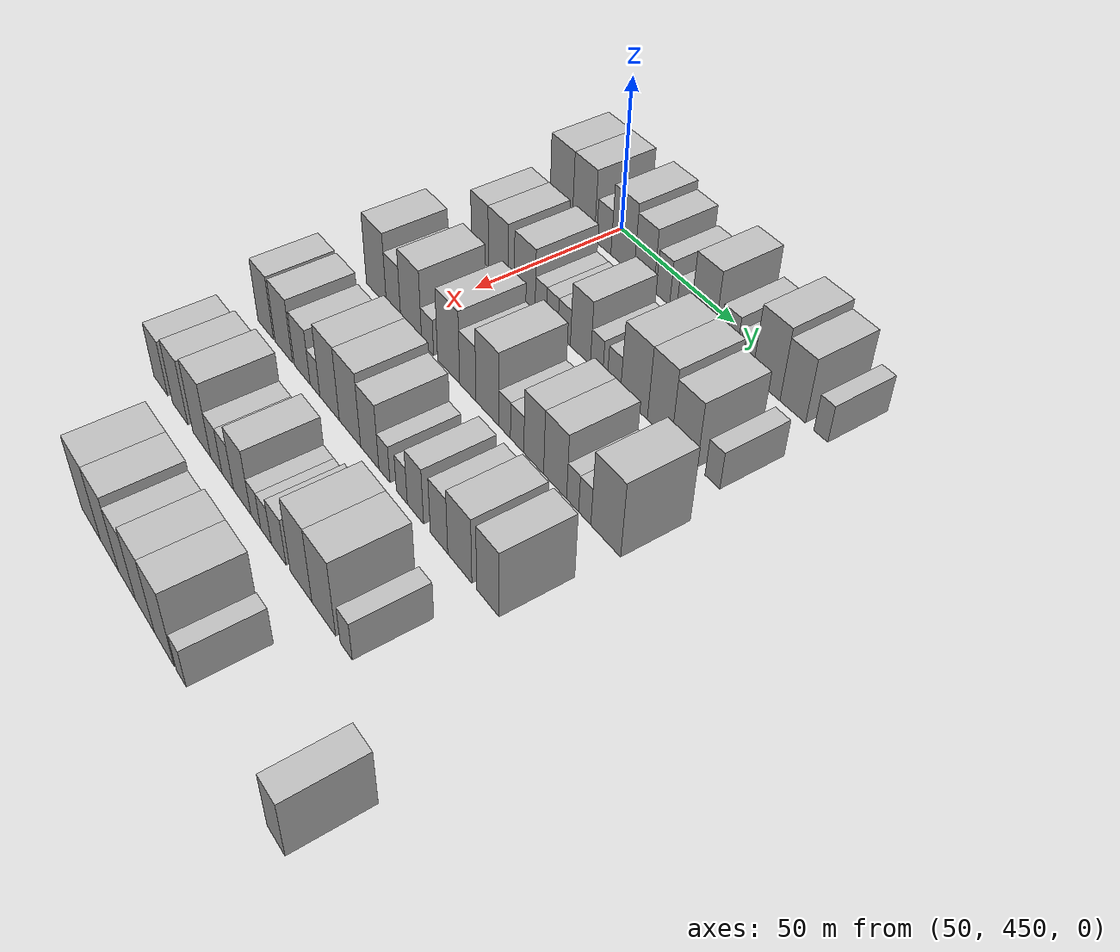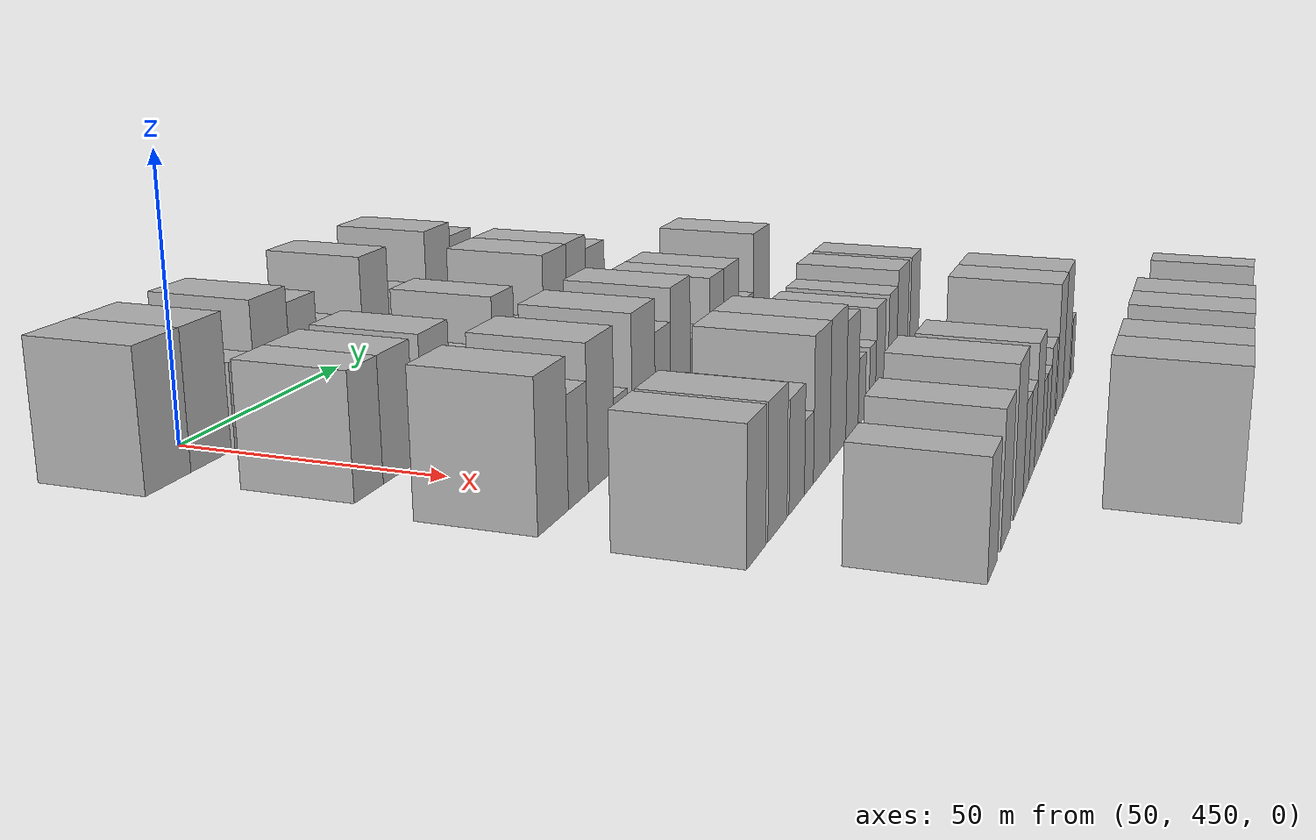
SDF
<sdf version="1.6">
 <world name="default">
  <model name="building_112">
   <static>1</static>
   <pose>50.0000 433.5673 0 0.000000 0.000000 0.000000</pose>
   <link name="link">
    <pose>0 0 12.00 0 0 0</pose>
    <collision name="collision"><geometry><box><size>20.0000 11.4070 24.0000</size></box></geometry></collision>
    <visual name="visual">
     <cast_shadows>0</cast_shadows>
     <geometry><box><size>20.0000 11.4070 24.0000</size></box></geometry>
     <material>
      <script>
       <uri>model://HANNAS_wall/materials/scripts</uri>
       <uri>model://HANNAS_wall/materials/textures</uri>
       <name>vrc/HANNAS_wall</name>
      </script>
     </material>
    </visual>
   </link>
  </model>
  <model name="building_113">
   <static>1</static>
   <pose>50.0000 444.7097 0 0.000000 0.000000 0.000000</pose>
   <link name="link">
    <pose>0 0 12.00 0 0 0</pose>
    <collision name="collision"><geometry><box><size>20.0000 10.8776 24.0000</size></box></geometry></collision>
    <visual name="visual">
     <cast_shadows>0</cast_shadows>
     <geometry><box><size>20.0000 10.8776 24.0000</size></box></geometry>
     <material>
      <script>
       <uri>model://HANNAS_wall/materials/scripts</uri>
       <uri>model://HANNAS_wall/materials/textures</uri>
       <name>vrc/HANNAS_wall</name>
      </script>
     </material>
    </visual>
   </link>
  </model>
  <model name="building_114">
   <static>1</static>
   <pose>50.0000 454.5980 0 0.000000 0.000000 0.000000</pose>
   <link name="link">
    <pose>0 0 7.50 0 0 0</pose>
    <collision name="collision"><geometry><box><size>20.0000 6.8991 15.0000</size></box></geometry></collision>
    <visual name="visual">
     <cast_shadows>0</cast_shadows>
     <geometry><box><size>20.0000 6.8991 15.0000</size></box></geometry>
     <material>
      <script>
       <uri>model://HANNAS_wall/materials/scripts</uri>
       <uri>model://HANNAS_wall/materials/textures</uri>
       <name>vrc/HANNAS_wall</name>
      </script>
     </material>
    </visual>
   </link>
  </model>
  <model name="building_115">
   <static>1</static>
   <pose>50.0000 463.4071 0 0.000000 0.000000 0.000000</pose>
   <link name="link">
    <pose>0 0 12.00 0 0 0</pose>
    <collision name="collision"><geometry><box><size>20.0000 10.7191 24.0000</size></box></geometry></collision>
    <visual name="visual">
     <cast_shadows>0</cast_shadows>
     <geometry><box><size>20.0000 10.7191 24.0000</size></box></geometry>
     <material>
      <script>
       <uri>model://HANNAS_wall/materials/scripts</uri>
       <uri>model://HANNAS_wall/materials/textures</uri>
       <name>vrc/HANNAS_wall</name>
      </script>
     </material>
    </visual>
   </link>
  </model>
  <model name="building_116">
   <static>1</static>
   <pose>50.0000 473.2325 0 0.000000 0.000000 0.000000</pose>
   <link name="link">
    <pose>0 0 10.50 0 0 0</pose>
    <collision name="collision"><geometry><box><size>20.0000 8.9317 21.0000</size></box></geometry></collision>
    <visual name="visual">
     <cast_shadows>0</cast_shadows>
     <geometry><box><size>20.0000 8.9317 21.0000</size></box></geometry>
     <material>
      <script>
       <uri>model://HANNAS_wall/materials/scripts</uri>
       <uri>model://HANNAS_wall/materials/textures</uri>
       <name>vrc/HANNAS_wall</name>
      </script>
     </material>
    </visual>
   </link>
  </model>
  <model name="building_117">
   <static>1</static>
   <pose>50.0000 481.7260 0 0.000000 0.000000 0.000000</pose>
   <link name="link">
    <pose>0 0 7.50 0 0 0</pose>
    <collision name="collision"><geometry><box><size>20.0000 6.0553 15.0000</size></box></geometry></collision>
    <visual name="visual">
     <cast_shadows>0</cast_shadows>
     <geometry><box><size>20.0000 6.0553 15.0000</size></box></geometry>
     <material>
      <script>
       <uri>model://HANNAS_wall/materials/scripts</uri>
       <uri>model://HANNAS_wall/materials/textures</uri>
       <name>vrc/HANNAS_wall</name>
      </script>
     </material>
    </visual>
   </link>
  </model>
  <model name="building_118">
   <static>1</static>
   <pose>50.0000 490.5443 0 0.000000 0.000000 0.000000</pose>
   <link name="link">
    <pose>0 0 6.00 0 0 0</pose>
    <collision name="collision"><geometry><box><size>20.0000 5.5813 12.0000</size></box></geometry></collision>
    <visual name="visual">
     <cast_shadows>0</cast_shadows>
     <geometry><box><size>20.0000 5.5813 12.0000</size></box></geometry>
     <material>
      <script>
       <uri>model://HANNAS_wall/materials/scripts</uri>
       <uri>model://HANNAS_wall/materials/textures</uri>
       <name>vrc/HANNAS_wall</name>
      </script>
     </material>
    </visual>
   </link>
  </model>
  <model name="building_119">
   <static>1</static>
   <pose>50.0000 498.3899 0 0.000000 0.000000 0.000000</pose>
   <link name="link">
    <pose>0 0 12.00 0 0 0</pose>
    <collision name="collision"><geometry><box><size>20.0000 10.1099 24.0000</size></box></geometry></collision>
    <visual name="visual">
     <cast_shadows>0</cast_shadows>
     <geometry><box><size>20.0000 10.1099 24.0000</size></box></geometry>
     <material>
      <script>
       <uri>model://HANNAS_wall/materials/scripts</uri>
       <uri>model://HANNAS_wall/materials/textures</uri>
       <name>vrc/HANNAS_wall</name>
      </script>
     </material>
    </visual>
   </link>
  </model>
  <model name="building_120">
   <static>1</static>
   <pose>50.0000 508.7792 0 0.000000 0.000000 0.000000</pose>
   <link name="link">
    <pose>0 0 7.50 0 0 0</pose>
    <collision name="collision"><geometry><box><size>20.0000 6.6688 15.0000</size></box></geometry></collision>
    <visual name="visual">
     <cast_shadows>0</cast_shadows>
     <geometry><box><size>20.0000 6.6688 15.0000</size></box></geometry>
     <material>
      <script>
       <uri>model://HANNAS_wall/materials/scripts</uri>
       <uri>model://HANNAS_wall/materials/textures</uri>
       <name>vrc/HANNAS_wall</name>
      </script>
     </material>
    </visual>
   </link>
  </model>
  <model name="building_121">
   <static>1</static>
   <pose>50.0000 515.8957 0 0.000000 0.000000 0.000000</pose>
   <link name="link">
    <pose>0 0 6.00 0 0 0</pose>
    <collision name="collision"><geometry><box><size>20.0000 5.5642 12.0000</size></box></geometry></collision>
    <visual name="visual">
     <cast_shadows>0</cast_shadows>
     <geometry><box><size>20.0000 5.5642 12.0000</size></box></geometry>
     <material>
      <script>
       <uri>model://HANNAS_wall/materials/scripts</uri>
       <uri>model://HANNAS_wall/materials/textures</uri>
       <name>vrc/HANNAS_wall</name>
      </script>
     </material>
    </visual>
   </link>
  </model>
  <model name="building_122">
   <static>1</static>
   <pose>50.0000 524.0470 0 0.000000 0.000000 0.000000</pose>
   <link name="link">
    <pose>0 0 12.00 0 0 0</pose>
    <collision name="collision"><geometry><box><size>20.0000 10.7383 24.0000</size></box></geometry></collision>
    <visual name="visual">
     <cast_shadows>0</cast_shadows>
     <geometry><box><size>20.0000 10.7383 24.0000</size></box></geometry>
     <material>
      <script>
       <uri>model://HANNAS_wall/materials/scripts</uri>
       <uri>model://HANNAS_wall/materials/textures</uri>
       <name>vrc/HANNAS_wall</name>
      </script>
     </material>
    </visual>
   </link>
  </model>
  <model name="building_123">
   <static>1</static>
   <pose>50.0000 534.1508 0 0.000000 0.000000 0.000000</pose>
   <link name="link">
    <pose>0 0 10.50 0 0 0</pose>
    <collision name="collision"><geometry><box><size>20.0000 9.4693 21.0000</size></box></geometry></collision>
    <visual name="visual">
     <cast_shadows>0</cast_shadows>
     <geometry><box><size>20.0000 9.4693 21.0000</size></box></geometry>
     <material>
      <script>
       <uri>model://HANNAS_wall/materials/scripts</uri>
       <uri>model://HANNAS_wall/materials/textures</uri>
       <name>vrc/HANNAS_wall</name>
      </script>
     </material>
    </visual>
   </link>
  </model>
  <model name="building_124">
   <static>1</static>
   <pose>50.0000 544.3770 0 0.000000 0.000000 0.000000</pose>
   <link name="link">
    <pose>0 0 6.00 0 0 0</pose>
    <collision name="collision"><geometry><box><size>20.0000 4.9831 12.0000</size></box></geometry></collision>
    <visual name="visual">
     <cast_shadows>0</cast_shadows>
     <geometry><box><size>20.0000 4.9831 12.0000</size></box></geometry>
     <material>
      <script>
       <uri>model://HANNAS_wall/materials/scripts</uri>
       <uri>model://HANNAS_wall/materials/textures</uri>
       <name>vrc/HANNAS_wall</name>
      </script>
     </material>
    </visual>
   </link>
  </model>
  <model name="building_235">
   <static>1</static>
   <pose>82.0000 439.5871 0 0.000000 0.000000 0.000000</pose>
   <link name="link">
    <pose>0 0 10.50 0 0 0</pose>
    <collision name="collision"><geometry><box><size>20.0000 8.7557 21.0000</size></box></geometry></collision>
    <visual name="visual">
     <cast_shadows>0</cast_shadows>
     <geometry><box><size>20.0000 8.7557 21.0000</size></box></geometry>
     <material>
      <script>
       <uri>model://HANNAS_wall/materials/scripts</uri>
       <uri>model://HANNAS_wall/materials/textures</uri>
       <name>vrc/HANNAS_wall</name>
      </script>
     </material>
    </visual>
   </link>
  </model>
  <model name="building_236">
   <static>1</static>
   <pose>82.0000 448.9921 0 0.000000 0.000000 0.000000</pose>
   <link name="link">
    <pose>0 0 10.50 0 0 0</pose>
    <collision name="collision"><geometry><box><size>20.0000 10.0544 21.0000</size></box></geometry></collision>
    <visual name="visual">
     <cast_shadows>0</cast_shadows>
     <geometry><box><size>20.0000 10.0544 21.0000</size></box></geometry>
     <material>
      <script>
       <uri>model://HANNAS_wall/materials/scripts</uri>
       <uri>model://HANNAS_wall/materials/textures</uri>
       <name>vrc/HANNAS_wall</name>
      </script>
     </material>
    </visual>
   </link>
  </model>
  <model name="building_237">
   <static>1</static>
   <pose>82.0000 462.0577 0 0.000000 0.000000 0.000000</pose>
   <link name="link">
    <pose>0 0 10.50 0 0 0</pose>
    <collision name="collision"><geometry><box><size>20.0000 10.0767 21.0000</size></box></geometry></collision>
    <visual name="visual">
     <cast_shadows>0</cast_shadows>
     <geometry><box><size>20.0000 10.0767 21.0000</size></box></geometry>
     <material>
      <script>
       <uri>model://HANNAS_wall/materials/scripts</uri>
       <uri>model://HANNAS_wall/materials/textures</uri>
       <name>vrc/HANNAS_wall</name>
      </script>
     </material>
    </visual>
   </link>
  </model>
  <model name="building_238">
   <static>1</static>
   <pose>82.0000 469.7634 0 0.000000 0.000000 0.000000</pose>
   <link name="link">
    <pose>0 0 6.00 0 0 0</pose>
    <collision name="collision"><geometry><box><size>20.0000 5.3347 12.0000</size></box></geometry></collision>
    <visual name="visual">
     <cast_shadows>0</cast_shadows>
     <geometry><box><size>20.0000 5.3347 12.0000</size></box></geometry>
     <material>
      <script>
       <uri>model://HANNAS_wall/materials/scripts</uri>
       <uri>model://HANNAS_wall/materials/textures</uri>
       <name>vrc/HANNAS_wall</name>
      </script>
     </material>
    </visual>
   </link>
  </model>
  <model name="building_239">
   <static>1</static>
   <pose>82.0000 475.1442 0 0.000000 0.000000 0.000000</pose>
   <link name="link">
    <pose>0 0 6.00 0 0 0</pose>
    <collision name="collision"><geometry><box><size>20.0000 5.4269 12.0000</size></box></geometry></collision>
    <visual name="visual">
     <cast_shadows>0</cast_shadows>
     <geometry><box><size>20.0000 5.4269 12.0000</size></box></geometry>
     <material>
      <script>
       <uri>model://HANNAS_wall/materials/scripts</uri>
       <uri>model://HANNAS_wall/materials/textures</uri>
       <name>vrc/HANNAS_wall</name>
      </script>
     </material>
    </visual>
   </link>
  </model>
  <model name="building_240">
   <static>1</static>
   <pose>82.0000 480.7056 0 0.000000 0.000000 0.000000</pose>
   <link name="link">
    <pose>0 0 6.00 0 0 0</pose>
    <collision name="collision"><geometry><box><size>20.0000 5.6960 12.0000</size></box></geometry></collision>
    <visual name="visual">
     <cast_shadows>0</cast_shadows>
     <geometry><box><size>20.0000 5.6960 12.0000</size></box></geometry>
     <material>
      <script>
       <uri>model://HANNAS_wall/materials/scripts</uri>
       <uri>model://HANNAS_wall/materials/textures</uri>
       <name>vrc/HANNAS_wall</name>
      </script>
     </material>
    </visual>
   </link>
  </model>
  <model name="building_241">
   <static>1</static>
   <pose>82.0000 488.0110 0 0.000000 0.000000 0.000000</pose>
   <link name="link">
    <pose>0 0 10.50 0 0 0</pose>
    <collision name="collision"><geometry><box><size>20.0000 8.9148 21.0000</size></box></geometry></collision>
    <visual name="visual">
     <cast_shadows>0</cast_shadows>
     <geometry><box><size>20.0000 8.9148 21.0000</size></box></geometry>
     <material>
      <script>
       <uri>model://HANNAS_wall/materials/scripts</uri>
       <uri>model://HANNAS_wall/materials/textures</uri>
       <name>vrc/HANNAS_wall</name>
      </script>
     </material>
    </visual>
   </link>
  </model>
  <model name="building_242">
   <static>1</static>
   <pose>82.0000 495.1612 0 0.000000 0.000000 0.000000</pose>
   <link name="link">
    <pose>0 0 6.00 0 0 0</pose>
    <collision name="collision"><geometry><box><size>20.0000 5.3856 12.0000</size></box></geometry></collision>
    <visual name="visual">
     <cast_shadows>0</cast_shadows>
     <geometry><box><size>20.0000 5.3856 12.0000</size></box></geometry>
     <material>
      <script>
       <uri>model://HANNAS_wall/materials/scripts</uri>
       <uri>model://HANNAS_wall/materials/textures</uri>
       <name>vrc/HANNAS_wall</name>
      </script>
     </material>
    </visual>
   </link>
  </model>
  <model name="building_243">
   <static>1</static>
   <pose>82.0000 502.6369 0 0.000000 0.000000 0.000000</pose>
   <link name="link">
    <pose>0 0 6.00 0 0 0</pose>
    <collision name="collision"><geometry><box><size>20.0000 5.5657 12.0000</size></box></geometry></collision>
    <visual name="visual">
     <cast_shadows>0</cast_shadows>
     <geometry><box><size>20.0000 5.5657 12.0000</size></box></geometry>
     <material>
      <script>
       <uri>model://HANNAS_wall/materials/scripts</uri>
       <uri>model://HANNAS_wall/materials/textures</uri>
       <name>vrc/HANNAS_wall</name>
      </script>
     </material>
    </visual>
   </link>
  </model>
  <model name="building_244">
   <static>1</static>
   <pose>82.0000 510.9759 0 0.000000 0.000000 0.000000</pose>
   <link name="link">
    <pose>0 0 12.00 0 0 0</pose>
    <collision name="collision"><geometry><box><size>20.0000 11.1124 24.0000</size></box></geometry></collision>
    <visual name="visual">
     <cast_shadows>0</cast_shadows>
     <geometry><box><size>20.0000 11.1124 24.0000</size></box></geometry>
     <material>
      <script>
       <uri>model://HANNAS_wall/materials/scripts</uri>
       <uri>model://HANNAS_wall/materials/textures</uri>
       <name>vrc/HANNAS_wall</name>
      </script>
     </material>
    </visual>
   </link>
  </model>
  <model name="building_245">
   <static>1</static>
   <pose>82.0000 521.3392 0 0.000000 0.000000 0.000000</pose>
   <link name="link">
    <pose>0 0 12.00 0 0 0</pose>
    <collision name="collision"><geometry><box><size>20.0000 9.6143 24.0000</size></box></geometry></collision>
    <visual name="visual">
     <cast_shadows>0</cast_shadows>
     <geometry><box><size>20.0000 9.6143 24.0000</size></box></geometry>
     <material>
      <script>
       <uri>model://HANNAS_wall/materials/scripts</uri>
       <uri>model://HANNAS_wall/materials/textures</uri>
       <name>vrc/HANNAS_wall</name>
      </script>
     </material>
    </visual>
   </link>
  </model>
  <model name="building_246">
   <static>1</static>
   <pose>82.0000 531.0816 0 0.000000 0.000000 0.000000</pose>
   <link name="link">
    <pose>0 0 10.50 0 0 0</pose>
    <collision name="collision"><geometry><box><size>20.0000 9.8705 21.0000</size></box></geometry></collision>
    <visual name="visual">
     <cast_shadows>0</cast_shadows>
     <geometry><box><size>20.0000 9.8705 21.0000</size></box></geometry>
     <material>
      <script>
       <uri>model://HANNAS_wall/materials/scripts</uri>
       <uri>model://HANNAS_wall/materials/textures</uri>
       <name>vrc/HANNAS_wall</name>
      </script>
     </material>
    </visual>
   </link>
  </model>
  <model name="building_247">
   <static>1</static>
   <pose>82.0000 541.7681 0 0.000000 0.000000 0.000000</pose>
   <link name="link">
    <pose>0 0 6.00 0 0 0</pose>
    <collision name="collision"><geometry><box><size>20.0000 5.5025 12.0000</size></box></geometry></collision>
    <visual name="visual">
     <cast_shadows>0</cast_shadows>
     <geometry><box><size>20.0000 5.5025 12.0000</size></box></geometry>
     <material>
      <script>
       <uri>model://HANNAS_wall/materials/scripts</uri>
       <uri>model://HANNAS_wall/materials/textures</uri>
       <name>vrc/HANNAS_wall</name>
      </script>
     </material>
    </visual>
   </link>
  </model>
  <model name="building_357">
   <static>1</static>
   <pose>114.0000 437.2034 0 0.000000 0.000000 0.000000</pose>
   <link name="link">
    <pose>0 0 12.00 0 0 0</pose>
    <collision name="collision"><geometry><box><size>20.0000 11.0565 24.0000</size></box></geometry></collision>
    <visual name="visual">
     <cast_shadows>0</cast_shadows>
     <geometry><box><size>20.0000 11.0565 24.0000</size></box></geometry>
     <material>
      <script>
       <uri>model://HANNAS_wall/materials/scripts</uri>
       <uri>model://HANNAS_wall/materials/textures</uri>
       <name>vrc/HANNAS_wall</name>
      </script>
     </material>
    </visual>
   </link>
  </model>
  <model name="building_358">
   <static>1</static>
   <pose>114.0000 446.5801 0 0.000000 0.000000 0.000000</pose>
   <link name="link">
    <pose>0 0 9.00 0 0 0</pose>
    <collision name="collision"><geometry><box><size>20.0000 7.6969 18.0000</size></box></geometry></collision>
    <visual name="visual">
     <cast_shadows>0</cast_shadows>
     <geometry><box><size>20.0000 7.6969 18.0000</size></box></geometry>
     <material>
      <script>
       <uri>model://HANNAS_wall/materials/scripts</uri>
       <uri>model://HANNAS_wall/materials/textures</uri>
       <name>vrc/HANNAS_wall</name>
      </script>
     </material>
    </visual>
   </link>
  </model>
  <model name="building_359">
   <static>1</static>
   <pose>114.0000 455.8789 0 0.000000 0.000000 0.000000</pose>
   <link name="link">
    <pose>0 0 12.00 0 0 0</pose>
    <collision name="collision"><geometry><box><size>20.0000 10.9009 24.0000</size></box></geometry></collision>
    <visual name="visual">
     <cast_shadows>0</cast_shadows>
     <geometry><box><size>20.0000 10.9009 24.0000</size></box></geometry>
     <material>
      <script>
       <uri>model://HANNAS_wall/materials/scripts</uri>
       <uri>model://HANNAS_wall/materials/textures</uri>
       <name>vrc/HANNAS_wall</name>
      </script>
     </material>
    </visual>
   </link>
  </model>
  <model name="building_360">
   <static>1</static>
   <pose>114.0000 464.3250 0 0.000000 0.000000 0.000000</pose>
   <link name="link">
    <pose>0 0 6.00 0 0 0</pose>
    <collision name="collision"><geometry><box><size>20.0000 5.9912 12.0000</size></box></geometry></collision>
    <visual name="visual">
     <cast_shadows>0</cast_shadows>
     <geometry><box><size>20.0000 5.9912 12.0000</size></box></geometry>
     <material>
      <script>
       <uri>model://HANNAS_wall/materials/scripts</uri>
       <uri>model://HANNAS_wall/materials/textures</uri>
       <name>vrc/HANNAS_wall</name>
      </script>
     </material>
    </visual>
   </link>
  </model>
  <model name="building_361">
   <static>1</static>
   <pose>114.0000 474.7223 0 0.000000 0.000000 0.000000</pose>
   <link name="link">
    <pose>0 0 12.00 0 0 0</pose>
    <collision name="collision"><geometry><box><size>20.0000 10.8036 24.0000</size></box></geometry></collision>
    <visual name="visual">
     <cast_shadows>0</cast_shadows>
     <geometry><box><size>20.0000 10.8036 24.0000</size></box></geometry>
     <material>
      <script>
       <uri>model://HANNAS_wall/materials/scripts</uri>
       <uri>model://HANNAS_wall/materials/textures</uri>
       <name>vrc/HANNAS_wall</name>
      </script>
     </material>
    </visual>
   </link>
  </model>
  <model name="building_362">
   <static>1</static>
   <pose>114.0000 483.9769 0 0.000000 0.000000 0.000000</pose>
   <link name="link">
    <pose>0 0 9.00 0 0 0</pose>
    <collision name="collision"><geometry><box><size>20.0000 7.7055 18.0000</size></box></geometry></collision>
    <visual name="visual">
     <cast_shadows>0</cast_shadows>
     <geometry><box><size>20.0000 7.7055 18.0000</size></box></geometry>
     <material>
      <script>
       <uri>model://HANNAS_wall/materials/scripts</uri>
       <uri>model://HANNAS_wall/materials/textures</uri>
       <name>vrc/HANNAS_wall</name>
      </script>
     </material>
    </visual>
   </link>
  </model>
  <model name="building_363">
   <static>1</static>
   <pose>114.0000 493.0603 0 0.000000 0.000000 0.000000</pose>
   <link name="link">
    <pose>0 0 12.00 0 0 0</pose>
    <collision name="collision"><geometry><box><size>20.0000 10.4614 24.0000</size></box></geometry></collision>
    <visual name="visual">
     <cast_shadows>0</cast_shadows>
     <geometry><box><size>20.0000 10.4614 24.0000</size></box></geometry>
     <material>
      <script>
       <uri>model://HANNAS_wall/materials/scripts</uri>
       <uri>model://HANNAS_wall/materials/textures</uri>
       <name>vrc/HANNAS_wall</name>
      </script>
     </material>
    </visual>
   </link>
  </model>
  <model name="building_364">
   <static>1</static>
   <pose>114.0000 500.9068 0 0.000000 0.000000 0.000000</pose>
   <link name="link">
    <pose>0 0 6.00 0 0 0</pose>
    <collision name="collision"><geometry><box><size>20.0000 5.2316 12.0000</size></box></geometry></collision>
    <visual name="visual">
     <cast_shadows>0</cast_shadows>
     <geometry><box><size>20.0000 5.2316 12.0000</size></box></geometry>
     <material>
      <script>
       <uri>model://HANNAS_wall/materials/scripts</uri>
       <uri>model://HANNAS_wall/materials/textures</uri>
       <name>vrc/HANNAS_wall</name>
      </script>
     </material>
    </visual>
   </link>
  </model>
  <model name="building_365">
   <static>1</static>
   <pose>114.0000 506.4540 0 0.000000 0.000000 0.000000</pose>
   <link name="link">
    <pose>0 0 6.00 0 0 0</pose>
    <collision name="collision"><geometry><box><size>20.0000 5.8627 12.0000</size></box></geometry></collision>
    <visual name="visual">
     <cast_shadows>0</cast_shadows>
     <geometry><box><size>20.0000 5.8627 12.0000</size></box></geometry>
     <material>
      <script>
       <uri>model://HANNAS_wall/materials/scripts</uri>
       <uri>model://HANNAS_wall/materials/textures</uri>
       <name>vrc/HANNAS_wall</name>
      </script>
     </material>
    </visual>
   </link>
  </model>
  <model name="building_366">
   <static>1</static>
   <pose>114.0000 513.6047 0 0.000000 0.000000 0.000000</pose>
   <link name="link">
    <pose>0 0 10.50 0 0 0</pose>
    <collision name="collision"><geometry><box><size>20.0000 8.4387 21.0000</size></box></geometry></collision>
    <visual name="visual">
     <cast_shadows>0</cast_shadows>
     <geometry><box><size>20.0000 8.4387 21.0000</size></box></geometry>
     <material>
      <script>
       <uri>model://HANNAS_wall/materials/scripts</uri>
       <uri>model://HANNAS_wall/materials/textures</uri>
       <name>vrc/HANNAS_wall</name>
      </script>
     </material>
    </visual>
   </link>
  </model>
  <model name="building_367">
   <static>1</static>
   <pose>114.0000 522.5655 0 0.000000 0.000000 0.000000</pose>
   <link name="link">
    <pose>0 0 10.50 0 0 0</pose>
    <collision name="collision"><geometry><box><size>20.0000 9.4830 21.0000</size></box></geometry></collision>
    <visual name="visual">
     <cast_shadows>0</cast_shadows>
     <geometry><box><size>20.0000 9.4830 21.0000</size></box></geometry>
     <material>
      <script>
       <uri>model://HANNAS_wall/materials/scripts</uri>
       <uri>model://HANNAS_wall/materials/textures</uri>
       <name>vrc/HANNAS_wall</name>
      </script>
     </material>
    </visual>
   </link>
  </model>
  <model name="building_368">
   <static>1</static>
   <pose>114.0000 529.7323 0 0.000000 0.000000 0.000000</pose>
   <link name="link">
    <pose>0 0 6.00 0 0 0</pose>
    <collision name="collision"><geometry><box><size>20.0000 4.8505 12.0000</size></box></geometry></collision>
    <visual name="visual">
     <cast_shadows>0</cast_shadows>
     <geometry><box><size>20.0000 4.8505 12.0000</size></box></geometry>
     <material>
      <script>
       <uri>model://HANNAS_wall/materials/scripts</uri>
       <uri>model://HANNAS_wall/materials/textures</uri>
       <name>vrc/HANNAS_wall</name>
      </script>
     </material>
    </visual>
   </link>
  </model>
  <model name="building_369">
   <static>1</static>
   <pose>114.0000 534.5737 0 0.000000 0.000000 0.000000</pose>
   <link name="link">
    <pose>0 0 6.00 0 0 0</pose>
    <collision name="collision"><geometry><box><size>20.0000 4.8323 12.0000</size></box></geometry></collision>
    <visual name="visual">
     <cast_shadows>0</cast_shadows>
     <geometry><box><size>20.0000 4.8323 12.0000</size></box></geometry>
     <material>
      <script>
       <uri>model://HANNAS_wall/materials/scripts</uri>
       <uri>model://HANNAS_wall/materials/textures</uri>
       <name>vrc/HANNAS_wall</name>
      </script>
     </material>
    </visual>
   </link>
  </model>
  <model name="building_370">
   <static>1</static>
   <pose>114.0000 542.7017 0 0.000000 0.000000 0.000000</pose>
   <link name="link">
    <pose>0 0 12.00 0 0 0</pose>
    <collision name="collision"><geometry><box><size>20.0000 11.4238 24.0000</size></box></geometry></collision>
    <visual name="visual">
     <cast_shadows>0</cast_shadows>
     <geometry><box><size>20.0000 11.4238 24.0000</size></box></geometry>
     <material>
      <script>
       <uri>model://HANNAS_wall/materials/scripts</uri>
       <uri>model://HANNAS_wall/materials/textures</uri>
       <name>vrc/HANNAS_wall</name>
      </script>
     </material>
    </visual>
   </link>
  </model>
  <model name="building_475">
   <static>1</static>
   <pose>146.0000 434.2920 0 0.000000 0.000000 0.000000</pose>
   <link name="link">
    <pose>0 0 10.50 0 0 0</pose>
    <collision name="collision"><geometry><box><size>20.0000 9.1867 21.0000</size></box></geometry></collision>
    <visual name="visual">
     <cast_shadows>0</cast_shadows>
     <geometry><box><size>20.0000 9.1867 21.0000</size></box></geometry>
     <material>
      <script>
       <uri>model://HANNAS_wall/materials/scripts</uri>
       <uri>model://HANNAS_wall/materials/textures</uri>
       <name>vrc/HANNAS_wall</name>
      </script>
     </material>
    </visual>
   </link>
  </model>
  <model name="building_476">
   <static>1</static>
   <pose>146.0000 444.8740 0 0.000000 0.000000 0.000000</pose>
   <link name="link">
    <pose>0 0 10.50 0 0 0</pose>
    <collision name="collision"><geometry><box><size>20.0000 9.9771 21.0000</size></box></geometry></collision>
    <visual name="visual">
     <cast_shadows>0</cast_shadows>
     <geometry><box><size>20.0000 9.9771 21.0000</size></box></geometry>
     <material>
      <script>
       <uri>model://HANNAS_wall/materials/scripts</uri>
       <uri>model://HANNAS_wall/materials/textures</uri>
       <name>vrc/HANNAS_wall</name>
      </script>
     </material>
    </visual>
   </link>
  </model>
  <model name="building_477">
   <static>1</static>
   <pose>146.0000 455.2454 0 0.000000 0.000000 0.000000</pose>
   <link name="link">
    <pose>0 0 9.00 0 0 0</pose>
    <collision name="collision"><geometry><box><size>20.0000 8.7658 18.0000</size></box></geometry></collision>
    <visual name="visual">
     <cast_shadows>0</cast_shadows>
     <geometry><box><size>20.0000 8.7658 18.0000</size></box></geometry>
     <material>
      <script>
       <uri>model://HANNAS_wall/materials/scripts</uri>
       <uri>model://HANNAS_wall/materials/textures</uri>
       <name>vrc/HANNAS_wall</name>
      </script>
     </material>
    </visual>
   </link>
  </model>
  <model name="building_478">
   <static>1</static>
   <pose>146.0000 462.2881 0 0.000000 0.000000 0.000000</pose>
   <link name="link">
    <pose>0 0 6.00 0 0 0</pose>
    <collision name="collision"><geometry><box><size>20.0000 5.3195 12.0000</size></box></geometry></collision>
    <visual name="visual">
     <cast_shadows>0</cast_shadows>
     <geometry><box><size>20.0000 5.3195 12.0000</size></box></geometry>
     <material>
      <script>
       <uri>model://HANNAS_wall/materials/scripts</uri>
       <uri>model://HANNAS_wall/materials/textures</uri>
       <name>vrc/HANNAS_wall</name>
      </script>
     </material>
    </visual>
   </link>
  </model>
  <model name="building_479">
   <static>1</static>
   <pose>146.0000 470.0696 0 0.000000 0.000000 0.000000</pose>
   <link name="link">
    <pose>0 0 12.00 0 0 0</pose>
    <collision name="collision"><geometry><box><size>20.0000 10.2434 24.0000</size></box></geometry></collision>
    <visual name="visual">
     <cast_shadows>0</cast_shadows>
     <geometry><box><size>20.0000 10.2434 24.0000</size></box></geometry>
     <material>
      <script>
       <uri>model://HANNAS_wall/materials/scripts</uri>
       <uri>model://HANNAS_wall/materials/textures</uri>
       <name>vrc/HANNAS_wall</name>
      </script>
     </material>
    </visual>
   </link>
  </model>
  <model name="building_480">
   <static>1</static>
   <pose>146.0000 480.6338 0 0.000000 0.000000 0.000000</pose>
   <link name="link">
    <pose>0 0 12.00 0 0 0</pose>
    <collision name="collision"><geometry><box><size>20.0000 10.8851 24.0000</size></box></geometry></collision>
    <visual name="visual">
     <cast_shadows>0</cast_shadows>
     <geometry><box><size>20.0000 10.8851 24.0000</size></box></geometry>
     <material>
      <script>
       <uri>model://HANNAS_wall/materials/scripts</uri>
       <uri>model://HANNAS_wall/materials/textures</uri>
       <name>vrc/HANNAS_wall</name>
      </script>
     </material>
    </visual>
   </link>
  </model>
  <model name="building_481">
   <static>1</static>
   <pose>146.0000 490.5579 0 0.000000 0.000000 0.000000</pose>
   <link name="link">
    <pose>0 0 10.50 0 0 0</pose>
    <collision name="collision"><geometry><box><size>20.0000 8.9630 21.0000</size></box></geometry></collision>
    <visual name="visual">
     <cast_shadows>0</cast_shadows>
     <geometry><box><size>20.0000 8.9630 21.0000</size></box></geometry>
     <material>
      <script>
       <uri>model://HANNAS_wall/materials/scripts</uri>
       <uri>model://HANNAS_wall/materials/textures</uri>
       <name>vrc/HANNAS_wall</name>
      </script>
     </material>
    </visual>
   </link>
  </model>
  <model name="building_482">
   <static>1</static>
   <pose>146.0000 497.6826 0 0.000000 0.000000 0.000000</pose>
   <link name="link">
    <pose>0 0 6.00 0 0 0</pose>
    <collision name="collision"><geometry><box><size>20.0000 5.2864 12.0000</size></box></geometry></collision>
    <visual name="visual">
     <cast_shadows>0</cast_shadows>
     <geometry><box><size>20.0000 5.2864 12.0000</size></box></geometry>
     <material>
      <script>
       <uri>model://HANNAS_wall/materials/scripts</uri>
       <uri>model://HANNAS_wall/materials/textures</uri>
       <name>vrc/HANNAS_wall</name>
      </script>
     </material>
    </visual>
   </link>
  </model>
  <model name="building_483">
   <static>1</static>
   <pose>146.0000 505.8695 0 0.000000 0.000000 0.000000</pose>
   <link name="link">
    <pose>0 0 6.00 0 0 0</pose>
    <collision name="collision"><geometry><box><size>20.0000 5.0873 12.0000</size></box></geometry></collision>
    <visual name="visual">
     <cast_shadows>0</cast_shadows>
     <geometry><box><size>20.0000 5.0873 12.0000</size></box></geometry>
     <material>
      <script>
       <uri>model://HANNAS_wall/materials/scripts</uri>
       <uri>model://HANNAS_wall/materials/textures</uri>
       <name>vrc/HANNAS_wall</name>
      </script>
     </material>
    </visual>
   </link>
  </model>
  <model name="building_484">
   <static>1</static>
   <pose>146.0000 512.1053 0 0.000000 0.000000 0.000000</pose>
   <link name="link">
    <pose>0 0 9.00 0 0 0</pose>
    <collision name="collision"><geometry><box><size>20.0000 7.3844 18.0000</size></box></geometry></collision>
    <visual name="visual">
     <cast_shadows>0</cast_shadows>
     <geometry><box><size>20.0000 7.3844 18.0000</size></box></geometry>
     <material>
      <script>
       <uri>model://HANNAS_wall/materials/scripts</uri>
       <uri>model://HANNAS_wall/materials/textures</uri>
       <name>vrc/HANNAS_wall</name>
      </script>
     </material>
    </visual>
   </link>
  </model>
  <model name="building_485">
   <static>1</static>
   <pose>146.0000 522.5879 0 0.000000 0.000000 0.000000</pose>
   <link name="link">
    <pose>0 0 9.00 0 0 0</pose>
    <collision name="collision"><geometry><box><size>20.0000 7.5806 18.0000</size></box></geometry></collision>
    <visual name="visual">
     <cast_shadows>0</cast_shadows>
     <geometry><box><size>20.0000 7.5806 18.0000</size></box></geometry>
     <material>
      <script>
       <uri>model://HANNAS_wall/materials/scripts</uri>
       <uri>model://HANNAS_wall/materials/textures</uri>
       <name>vrc/HANNAS_wall</name>
      </script>
     </material>
    </visual>
   </link>
  </model>
  <model name="building_486">
   <static>1</static>
   <pose>146.0000 531.4395 0 0.000000 0.000000 0.000000</pose>
   <link name="link">
    <pose>0 0 10.50 0 0 0</pose>
    <collision name="collision"><geometry><box><size>20.0000 10.1227 21.0000</size></box></geometry></collision>
    <visual name="visual">
     <cast_shadows>0</cast_shadows>
     <geometry><box><size>20.0000 10.1227 21.0000</size></box></geometry>
     <material>
      <script>
       <uri>model://HANNAS_wall/materials/scripts</uri>
       <uri>model://HANNAS_wall/materials/textures</uri>
       <name>vrc/HANNAS_wall</name>
      </script>
     </material>
    </visual>
   </link>
  </model>
  <model name="building_487">
   <static>1</static>
   <pose>146.0000 543.0072 0 0.000000 0.000000 0.000000</pose>
   <link name="link">
    <pose>0 0 10.50 0 0 0</pose>
    <collision name="collision"><geometry><box><size>20.0000 9.0128 21.0000</size></box></geometry></collision>
    <visual name="visual">
     <cast_shadows>0</cast_shadows>
     <geometry><box><size>20.0000 9.0128 21.0000</size></box></geometry>
     <material>
      <script>
       <uri>model://HANNAS_wall/materials/scripts</uri>
       <uri>model://HANNAS_wall/materials/textures</uri>
       <name>vrc/HANNAS_wall</name>
      </script>
     </material>
    </visual>
   </link>
  </model>
  <model name="building_596">
   <static>1</static>
   <pose>178.0000 439.3808 0 0.000000 0.000000 0.000000</pose>
   <link name="link">
    <pose>0 0 9.00 0 0 0</pose>
    <collision name="collision"><geometry><box><size>20.0000 8.7221 18.0000</size></box></geometry></collision>
    <visual name="visual">
     <cast_shadows>0</cast_shadows>
     <geometry><box><size>20.0000 8.7221 18.0000</size></box></geometry>
     <material>
      <script>
       <uri>model://HANNAS_wall/materials/scripts</uri>
       <uri>model://HANNAS_wall/materials/textures</uri>
       <name>vrc/HANNAS_wall</name>
      </script>
     </material>
    </visual>
   </link>
  </model>
  <model name="building_597">
   <static>1</static>
   <pose>178.0000 451.4446 0 0.000000 0.000000 0.000000</pose>
   <link name="link">
    <pose>0 0 10.50 0 0 0</pose>
    <collision name="collision"><geometry><box><size>20.0000 9.4056 21.0000</size></box></geometry></collision>
    <visual name="visual">
     <cast_shadows>0</cast_shadows>
     <geometry><box><size>20.0000 9.4056 21.0000</size></box></geometry>
     <material>
      <script>
       <uri>model://HANNAS_wall/materials/scripts</uri>
       <uri>model://HANNAS_wall/materials/textures</uri>
       <name>vrc/HANNAS_wall</name>
      </script>
     </material>
    </visual>
   </link>
  </model>
  <model name="building_598">
   <static>1</static>
   <pose>178.0000 464.3215 0 0.000000 0.000000 0.000000</pose>
   <link name="link">
    <pose>0 0 12.00 0 0 0</pose>
    <collision name="collision"><geometry><box><size>20.0000 10.3482 24.0000</size></box></geometry></collision>
    <visual name="visual">
     <cast_shadows>0</cast_shadows>
     <geometry><box><size>20.0000 10.3482 24.0000</size></box></geometry>
     <material>
      <script>
       <uri>model://HANNAS_wall/materials/scripts</uri>
       <uri>model://HANNAS_wall/materials/textures</uri>
       <name>vrc/HANNAS_wall</name>
      </script>
     </material>
    </visual>
   </link>
  </model>
  <model name="building_599">
   <static>1</static>
   <pose>178.0000 472.6909 0 0.000000 0.000000 0.000000</pose>
   <link name="link">
    <pose>0 0 7.50 0 0 0</pose>
    <collision name="collision"><geometry><box><size>20.0000 6.3905 15.0000</size></box></geometry></collision>
    <visual name="visual">
     <cast_shadows>0</cast_shadows>
     <geometry><box><size>20.0000 6.3905 15.0000</size></box></geometry>
     <material>
      <script>
       <uri>model://HANNAS_wall/materials/scripts</uri>
       <uri>model://HANNAS_wall/materials/textures</uri>
       <name>vrc/HANNAS_wall</name>
      </script>
     </material>
    </visual>
   </link>
  </model>
  <model name="building_600">
   <static>1</static>
   <pose>178.0000 479.1033 0 0.000000 0.000000 0.000000</pose>
   <link name="link">
    <pose>0 0 7.50 0 0 0</pose>
    <collision name="collision"><geometry><box><size>20.0000 6.4344 15.0000</size></box></geometry></collision>
    <visual name="visual">
     <cast_shadows>0</cast_shadows>
     <geometry><box><size>20.0000 6.4344 15.0000</size></box></geometry>
     <material>
      <script>
       <uri>model://HANNAS_wall/materials/scripts</uri>
       <uri>model://HANNAS_wall/materials/textures</uri>
       <name>vrc/HANNAS_wall</name>
      </script>
     </material>
    </visual>
   </link>
  </model>
  <model name="building_601">
   <static>1</static>
   <pose>178.0000 486.9740 0 0.000000 0.000000 0.000000</pose>
   <link name="link">
    <pose>0 0 10.50 0 0 0</pose>
    <collision name="collision"><geometry><box><size>20.0000 9.3069 21.0000</size></box></geometry></collision>
    <visual name="visual">
     <cast_shadows>0</cast_shadows>
     <geometry><box><size>20.0000 9.3069 21.0000</size></box></geometry>
     <material>
      <script>
       <uri>model://HANNAS_wall/materials/scripts</uri>
       <uri>model://HANNAS_wall/materials/textures</uri>
       <name>vrc/HANNAS_wall</name>
      </script>
     </material>
    </visual>
   </link>
  </model>
  <model name="building_602">
   <static>1</static>
   <pose>178.0000 494.1672 0 0.000000 0.000000 0.000000</pose>
   <link name="link">
    <pose>0 0 6.00 0 0 0</pose>
    <collision name="collision"><geometry><box><size>20.0000 5.0795 12.0000</size></box></geometry></collision>
    <visual name="visual">
     <cast_shadows>0</cast_shadows>
     <geometry><box><size>20.0000 5.0795 12.0000</size></box></geometry>
     <material>
      <script>
       <uri>model://HANNAS_wall/materials/scripts</uri>
       <uri>model://HANNAS_wall/materials/textures</uri>
       <name>vrc/HANNAS_wall</name>
      </script>
     </material>
    </visual>
   </link>
  </model>
  <model name="building_603">
   <static>1</static>
   <pose>178.0000 499.4375 0 0.000000 0.000000 0.000000</pose>
   <link name="link">
    <pose>0 0 6.00 0 0 0</pose>
    <collision name="collision"><geometry><box><size>20.0000 5.4612 12.0000</size></box></geometry></collision>
    <visual name="visual">
     <cast_shadows>0</cast_shadows>
     <geometry><box><size>20.0000 5.4612 12.0000</size></box></geometry>
     <material>
      <script>
       <uri>model://HANNAS_wall/materials/scripts</uri>
       <uri>model://HANNAS_wall/materials/textures</uri>
       <name>vrc/HANNAS_wall</name>
      </script>
     </material>
    </visual>
   </link>
  </model>
  <model name="building_604">
   <static>1</static>
   <pose>178.0000 505.8388 0 0.000000 0.000000 0.000000</pose>
   <link name="link">
    <pose>0 0 7.50 0 0 0</pose>
    <collision name="collision"><geometry><box><size>20.0000 7.3413 15.0000</size></box></geometry></collision>
    <visual name="visual">
     <cast_shadows>0</cast_shadows>
     <geometry><box><size>20.0000 7.3413 15.0000</size></box></geometry>
     <material>
      <script>
       <uri>model://HANNAS_wall/materials/scripts</uri>
       <uri>model://HANNAS_wall/materials/textures</uri>
       <name>vrc/HANNAS_wall</name>
      </script>
     </material>
    </visual>
   </link>
  </model>
  <model name="building_605">
   <static>1</static>
   <pose>178.0000 516.7147 0 0.000000 0.000000 0.000000</pose>
   <link name="link">
    <pose>0 0 12.00 0 0 0</pose>
    <collision name="collision"><geometry><box><size>20.0000 10.4106 24.0000</size></box></geometry></collision>
    <visual name="visual">
     <cast_shadows>0</cast_shadows>
     <geometry><box><size>20.0000 10.4106 24.0000</size></box></geometry>
     <material>
      <script>
       <uri>model://HANNAS_wall/materials/scripts</uri>
       <uri>model://HANNAS_wall/materials/textures</uri>
       <name>vrc/HANNAS_wall</name>
      </script>
     </material>
    </visual>
   </link>
  </model>
  <model name="building_606">
   <static>1</static>
   <pose>178.0000 527.3476 0 0.000000 0.000000 0.000000</pose>
   <link name="link">
    <pose>0 0 12.00 0 0 0</pose>
    <collision name="collision"><geometry><box><size>20.0000 10.8551 24.0000</size></box></geometry></collision>
    <visual name="visual">
     <cast_shadows>0</cast_shadows>
     <geometry><box><size>20.0000 10.8551 24.0000</size></box></geometry>
     <material>
      <script>
       <uri>model://HANNAS_wall/materials/scripts</uri>
       <uri>model://HANNAS_wall/materials/textures</uri>
       <name>vrc/HANNAS_wall</name>
      </script>
     </material>
    </visual>
   </link>
  </model>
  <model name="building_607">
   <static>1</static>
   <pose>178.0000 537.4473 0 0.000000 0.000000 0.000000</pose>
   <link name="link">
    <pose>0 0 6.00 0 0 0</pose>
    <collision name="collision"><geometry><box><size>20.0000 5.3444 12.0000</size></box></geometry></collision>
    <visual name="visual">
     <cast_shadows>0</cast_shadows>
     <geometry><box><size>20.0000 5.3444 12.0000</size></box></geometry>
     <material>
      <script>
       <uri>model://HANNAS_wall/materials/scripts</uri>
       <uri>model://HANNAS_wall/materials/textures</uri>
       <name>vrc/HANNAS_wall</name>
      </script>
     </material>
    </visual>
   </link>
  </model>
  <model name="building_719">
   <static>1</static>
   <pose>210.0000 474.1006 0 0.000000 0.000000 0.000000</pose>
   <link name="link">
    <pose>0 0 12.00 0 0 0</pose>
    <collision name="collision"><geometry><box><size>20.0000 11.6141 24.0000</size></box></geometry></collision>
    <visual name="visual">
     <cast_shadows>0</cast_shadows>
     <geometry><box><size>20.0000 11.6141 24.0000</size></box></geometry>
     <material>
      <script>
       <uri>model://HANNAS_wall/materials/scripts</uri>
       <uri>model://HANNAS_wall/materials/textures</uri>
       <name>vrc/HANNAS_wall</name>
      </script>
     </material>
    </visual>
   </link>
  </model>
  <model name="building_720">
   <static>1</static>
   <pose>210.0000 485.2869 0 0.000000 0.000000 0.000000</pose>
   <link name="link">
    <pose>0 0 12.00 0 0 0</pose>
    <collision name="collision"><geometry><box><size>20.0000 10.7586 24.0000</size></box></geometry></collision>
    <visual name="visual">
     <cast_shadows>0</cast_shadows>
     <geometry><box><size>20.0000 10.7586 24.0000</size></box></geometry>
     <material>
      <script>
       <uri>model://HANNAS_wall/materials/scripts</uri>
       <uri>model://HANNAS_wall/materials/textures</uri>
       <name>vrc/HANNAS_wall</name>
      </script>
     </material>
    </visual>
   </link>
  </model>
  <model name="building_721">
   <static>1</static>
   <pose>210.0000 495.5540 0 0.000000 0.000000 0.000000</pose>
   <link name="link">
    <pose>0 0 10.50 0 0 0</pose>
    <collision name="collision"><geometry><box><size>20.0000 9.7756 21.0000</size></box></geometry></collision>
    <visual name="visual">
     <cast_shadows>0</cast_shadows>
     <geometry><box><size>20.0000 9.7756 21.0000</size></box></geometry>
     <material>
      <script>
       <uri>model://HANNAS_wall/materials/scripts</uri>
       <uri>model://HANNAS_wall/materials/textures</uri>
       <name>vrc/HANNAS_wall</name>
      </script>
     </material>
    </visual>
   </link>
  </model>
  <model name="building_722">
   <static>1</static>
   <pose>210.0000 505.6459 0 0.000000 0.000000 0.000000</pose>
   <link name="link">
    <pose>0 0 12.00 0 0 0</pose>
    <collision name="collision"><geometry><box><size>20.0000 10.4081 24.0000</size></box></geometry></collision>
    <visual name="visual">
     <cast_shadows>0</cast_shadows>
     <geometry><box><size>20.0000 10.4081 24.0000</size></box></geometry>
     <material>
      <script>
       <uri>model://HANNAS_wall/materials/scripts</uri>
       <uri>model://HANNAS_wall/materials/textures</uri>
       <name>vrc/HANNAS_wall</name>
      </script>
     </material>
    </visual>
   </link>
  </model>
  <model name="building_723">
   <static>1</static>
   <pose>210.0000 516.0680 0 0.000000 0.000000 0.000000</pose>
   <link name="link">
    <pose>0 0 12.00 0 0 0</pose>
    <collision name="collision"><geometry><box><size>20.0000 10.4361 24.0000</size></box></geometry></collision>
    <visual name="visual">
     <cast_shadows>0</cast_shadows>
     <geometry><box><size>20.0000 10.4361 24.0000</size></box></geometry>
     <material>
      <script>
       <uri>model://HANNAS_wall/materials/scripts</uri>
       <uri>model://HANNAS_wall/materials/textures</uri>
       <name>vrc/HANNAS_wall</name>
      </script>
     </material>
    </visual>
   </link>
  </model>
  <model name="building_724">
   <static>1</static>
   <pose>210.0000 524.7957 0 0.000000 0.000000 0.000000</pose>
   <link name="link">
    <pose>0 0 6.00 0 0 0</pose>
    <collision name="collision"><geometry><box><size>20.0000 5.0192 12.0000</size></box></geometry></collision>
    <visual name="visual">
     <cast_shadows>0</cast_shadows>
     <geometry><box><size>20.0000 5.0192 12.0000</size></box></geometry>
     <material>
      <script>
       <uri>model://HANNAS_wall/materials/scripts</uri>
       <uri>model://HANNAS_wall/materials/textures</uri>
       <name>vrc/HANNAS_wall</name>
      </script>
     </material>
    </visual>
   </link>
  </model>
  <model name="building_725">
   <static>1</static>
   <pose>210.0000 568.5942 0 0.000000 0.000000 0.000000</pose>
   <link name="link">
    <pose>0 0 9.00 0 0 0</pose>
    <collision name="collision"><geometry><box><size>20.0000 7.5259 18.0000</size></box></geometry></collision>
    <visual name="visual">
     <cast_shadows>0</cast_shadows>
     <geometry><box><size>20.0000 7.5259 18.0000</size></box></geometry>
     <material>
      <script>
       <uri>model://HANNAS_wall/materials/scripts</uri>
       <uri>model://HANNAS_wall/materials/textures</uri>
       <name>vrc/HANNAS_wall</name>
      </script>
     </material>
    </visual>
   </link>
  </model>
 </world>
</sdf>
